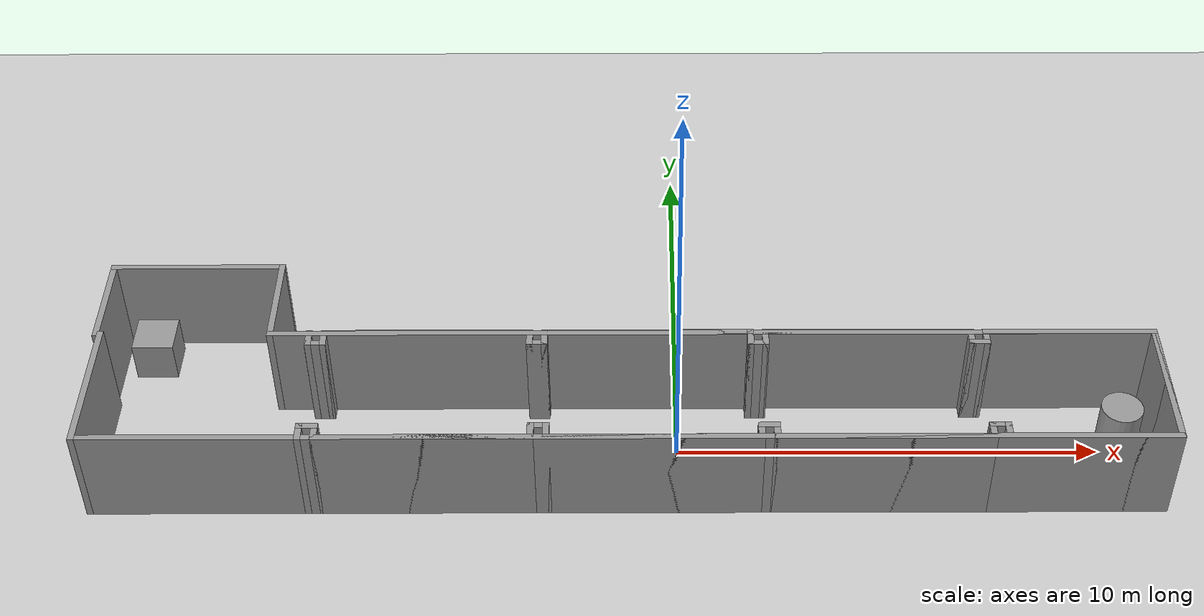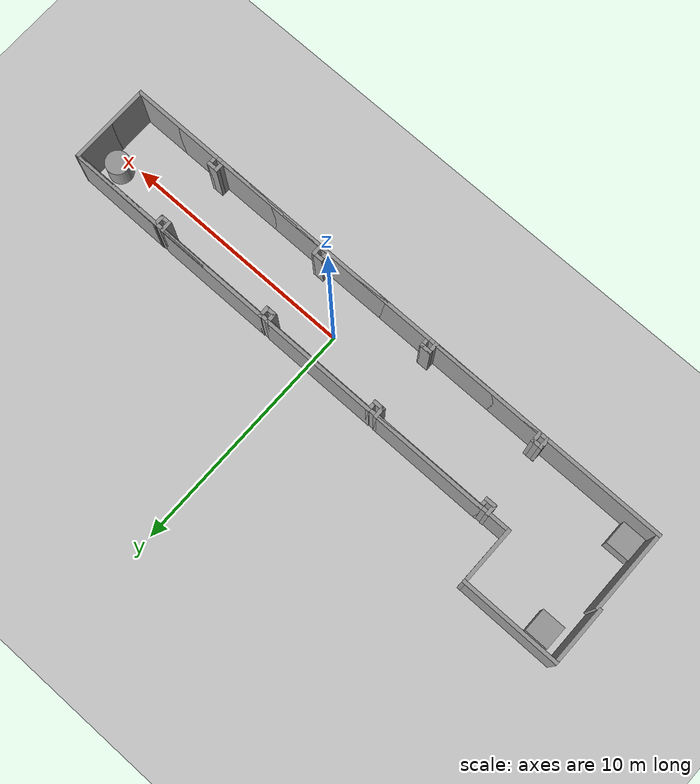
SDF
<sdf version="1.7">
 <world name="default">
  <light name="sun" type="directional">
   <pose>0 0 10 0 -0 0</pose>
   <diffuse>0.8 0.8 0.8 1</diffuse>
   <specular>0.2 0.2 0.2 1</specular>
   <attenuation>
    <range>1000</range>
    <constant>0.9</constant>
    <linear>0.01</linear>
    <quadratic>0.001</quadratic>
   </attenuation>
   <direction>-0.5 0.1 -0.9</direction>
   <spot><inner_angle>0</inner_angle><outer_angle>0</outer_angle><falloff>0</falloff></spot>
  </light>
  <model name="ground_plane">
   <static>1</static>
   <link name="link">
    <collision name="collision">
     <geometry><plane><normal>0 0 1</normal><size>100 100</size></plane></geometry>
     <surface>
      <contact><collide_bitmask>65535</collide_bitmask></contact>
      <friction><ode><mu>100</mu><mu2>50</mu2></ode></friction>
     </surface>
    </collision>
    <visual name="visual">
     <cast_shadows>0</cast_shadows>
     <geometry><plane><normal>0 0 1</normal><size>100 100</size></plane></geometry>
     <material>
      <script><uri>file://media/materials/scripts/gazebo.material</uri><name>Gazebo/Grey</name></script>
     </material>
    </visual>
   </link>
  </model>
  <gravity>0 0 -9.8</gravity>
  <magnetic_field>6e-06 2.3e-05 -4.2e-05</magnetic_field>
  <atmosphere type="adiabatic"/>
  <physics type="ode">
   <max_step_size>0.001</max_step_size>
   <real_time_factor>1</real_time_factor>
   <real_time_update_rate>1000</real_time_update_rate>
  </physics>
  <scene><ambient>0.4 0.4 0.4 1</ambient><background>0.7 0.7 0.7 1</background><shadows>1</shadows></scene>
  <spherical_coordinates>
   <surface_model>EARTH_WGS84</surface_model>
   <latitude_deg>0</latitude_deg>
   <longitude_deg>0</longitude_deg>
   <elevation>0</elevation>
   <heading_deg>0</heading_deg>
  </spherical_coordinates>
  <model name="hanhlang12">
   <pose>-1.22444 1.04892 0 0 -0 0</pose>
   <link name="Wall_1">
    <collision name="Wall_1_Collision">
     <geometry><box><size>3.5 0.15 2.5</size></box></geometry>
     <pose>0 0 1.25 0 -0 0</pose>
    </collision>
    <visual name="Wall_1_Visual">
     <pose>0 0 1.25 0 -0 0</pose>
     <geometry><box><size>3.5 0.15 2.5</size></box></geometry>
     <material>
      <script><uri>file://media/materials/scripts/gazebo.material</uri><name>Gazebo/Grey</name></script>
      <ambient>1 1 1 1</ambient>
     </material>
     <meta><layer>0</layer></meta>
    </visual>
    <pose>-12.3752 -1.175 0 0 -0 -1.5708</pose>
   </link>
   <link name="Wall_11">
    <collision name="Wall_11_Collision">
     <geometry><box><size>0.5 0.15 2.5</size></box></geometry>
     <pose>0 0 1.25 0 -0 0</pose>
    </collision>
    <visual name="Wall_11_Visual">
     <pose>0 0 1.25 0 -0 0</pose>
     <geometry><box><size>0.5 0.15 2.5</size></box></geometry>
     <material>
      <script><uri>file://media/materials/scripts/gazebo.material</uri><name>Gazebo/Grey</name></script>
      <ambient>1 1 1 1</ambient>
     </material>
     <meta><layer>0</layer></meta>
    </visual>
    <pose>-7.44813 0.349555 0 0 -0 -1.5708</pose>
   </link>
   <link name="Wall_12">
    <collision name="Wall_12_Collision">
     <geometry><box><size>0.5 0.15 2.5</size></box></geometry>
     <pose>0 0 1.25 0 -0 0</pose>
    </collision>
    <visual name="Wall_12_Visual">
     <pose>0 0 1.25 0 -0 0</pose>
     <geometry><box><size>0.5 0.15 2.5</size></box></geometry>
     <material>
      <script><uri>file://media/materials/scripts/gazebo.material</uri><name>Gazebo/Grey</name></script>
      <ambient>1 1 1 1</ambient>
     </material>
     <meta><layer>0</layer></meta>
    </visual>
    <pose>-7.27313 0.174555 0 0 -0 0</pose>
   </link>
   <link name="Wall_13">
    <collision name="Wall_13_Collision">
     <geometry><box><size>0.5 0.15 2.5</size></box></geometry>
     <pose>0 0 1.25 0 -0 0</pose>
    </collision>
    <visual name="Wall_13_Visual">
     <pose>0 0 1.25 0 -0 0</pose>
     <geometry><box><size>0.5 0.15 2.5</size></box></geometry>
     <material>
      <script><uri>file://media/materials/scripts/gazebo.material</uri><name>Gazebo/Grey</name></script>
      <ambient>1 1 1 1</ambient>
     </material>
     <meta><layer>0</layer></meta>
    </visual>
    <pose>-7.09812 0.349555 0 0 -0 1.5708</pose>
   </link>
   <link name="Wall_14">
    <collision name="Wall_14_Collision">
     <geometry><box><size>5 0.15 2.5</size></box></geometry>
     <pose>0 0 1.25 0 -0 0</pose>
    </collision>
    <visual name="Wall_14_Visual">
     <pose>0 0 1.25 0 -0 0</pose>
     <geometry><box><size>5 0.15 2.5</size></box></geometry>
     <material>
      <script><uri>file://media/materials/scripts/gazebo.material</uri><name>Gazebo/Grey</name></script>
      <ambient>1 1 1 1</ambient>
     </material>
     <meta><layer>0</layer></meta>
    </visual>
    <pose>-4.67312 0.524555 0 0 -0 0</pose>
   </link>
   <link name="Wall_15">
    <collision name="Wall_15_Collision">
     <geometry><box><size>0.5 0.15 2.5</size></box></geometry>
     <pose>0 0 1.25 0 -0 0</pose>
    </collision>
    <visual name="Wall_15_Visual">
     <pose>0 0 1.25 0 -0 0</pose>
     <geometry><box><size>0.5 0.15 2.5</size></box></geometry>
     <material>
      <script><uri>file://media/materials/scripts/gazebo.material</uri><name>Gazebo/Grey</name></script>
      <ambient>1 1 1 1</ambient>
     </material>
     <meta><layer>0</layer></meta>
    </visual>
    <pose>-2.24812 0.349555 0 0 -0 -1.5708</pose>
   </link>
   <link name="Wall_16">
    <collision name="Wall_16_Collision">
     <geometry><box><size>0.5 0.15 2.5</size></box></geometry>
     <pose>0 0 1.25 0 -0 0</pose>
    </collision>
    <visual name="Wall_16_Visual">
     <pose>0 0 1.25 0 -0 0</pose>
     <geometry><box><size>0.5 0.15 2.5</size></box></geometry>
     <material>
      <script><uri>file://media/materials/scripts/gazebo.material</uri><name>Gazebo/Grey</name></script>
      <ambient>1 1 1 1</ambient>
     </material>
     <meta><layer>0</layer></meta>
    </visual>
    <pose>-2.07312 0.174555 0 0 -0 0</pose>
   </link>
   <link name="Wall_17">
    <collision name="Wall_17_Collision">
     <geometry><box><size>0.5 0.15 2.5</size></box></geometry>
     <pose>0 0 1.25 0 -0 0</pose>
    </collision>
    <visual name="Wall_17_Visual">
     <pose>0 0 1.25 0 -0 0</pose>
     <geometry><box><size>0.5 0.15 2.5</size></box></geometry>
     <material>
      <script><uri>file://media/materials/scripts/gazebo.material</uri><name>Gazebo/Grey</name></script>
      <ambient>1 1 1 1</ambient>
     </material>
     <meta><layer>0</layer></meta>
    </visual>
    <pose>-1.89812 0.349555 0 0 -0 1.5708</pose>
   </link>
   <link name="Wall_18">
    <collision name="Wall_18_Collision">
     <geometry><box><size>5 0.15 2.5</size></box></geometry>
     <pose>0 0 1.25 0 -0 0</pose>
    </collision>
    <visual name="Wall_18_Visual">
     <pose>0 0 1.25 0 -0 0</pose>
     <geometry><box><size>5 0.15 2.5</size></box></geometry>
     <material>
      <script><uri>file://media/materials/scripts/gazebo.material</uri><name>Gazebo/Grey</name></script>
      <ambient>1 1 1 1</ambient>
     </material>
     <meta><layer>0</layer></meta>
    </visual>
    <pose>0.526876 0.524555 0 0 -0 0</pose>
   </link>
   <link name="Wall_19">
    <collision name="Wall_19_Collision">
     <geometry><box><size>0.5 0.15 2.5</size></box></geometry>
     <pose>0 0 1.25 0 -0 0</pose>
    </collision>
    <visual name="Wall_19_Visual">
     <pose>0 0 1.25 0 -0 0</pose>
     <geometry><box><size>0.5 0.15 2.5</size></box></geometry>
     <material>
      <script><uri>file://media/materials/scripts/gazebo.material</uri><name>Gazebo/Grey</name></script>
      <ambient>1 1 1 1</ambient>
     </material>
     <meta><layer>0</layer></meta>
    </visual>
    <pose>2.95188 0.349555 0 0 -0 -1.5708</pose>
   </link>
   <link name="Wall_2">
    <collision name="Wall_2_Collision">
     <geometry><box><size>25 0.15 2.5</size></box></geometry>
     <pose>0 0 1.25 0 -0 0</pose>
    </collision>
    <visual name="Wall_2_Visual">
     <pose>0 0 1.25 0 -0 0</pose>
     <geometry><box><size>25 0.15 2.5</size></box></geometry>
     <material>
      <script><uri>file://media/materials/scripts/gazebo.material</uri><name>Gazebo/Grey</name></script>
      <ambient>1 1 1 1</ambient>
     </material>
     <meta><layer>0</layer></meta>
    </visual>
    <pose>0.049769 -2.85 0 0 -0 0</pose>
   </link>
   <link name="Wall_20">
    <collision name="Wall_20_Collision">
     <geometry><box><size>0.5 0.15 2.5</size></box></geometry>
     <pose>0 0 1.25 0 -0 0</pose>
    </collision>
    <visual name="Wall_20_Visual">
     <pose>0 0 1.25 0 -0 0</pose>
     <geometry><box><size>0.5 0.15 2.5</size></box></geometry>
     <material>
      <script><uri>file://media/materials/scripts/gazebo.material</uri><name>Gazebo/Grey</name></script>
      <ambient>1 1 1 1</ambient>
     </material>
     <meta><layer>0</layer></meta>
    </visual>
    <pose>3.12688 0.174555 0 0 -0 0</pose>
   </link>
   <link name="Wall_21">
    <collision name="Wall_21_Collision">
     <geometry><box><size>0.5 0.15 2.5</size></box></geometry>
     <pose>0 0 1.25 0 -0 0</pose>
    </collision>
    <visual name="Wall_21_Visual">
     <pose>0 0 1.25 0 -0 0</pose>
     <geometry><box><size>0.5 0.15 2.5</size></box></geometry>
     <material>
      <script><uri>file://media/materials/scripts/gazebo.material</uri><name>Gazebo/Grey</name></script>
      <ambient>1 1 1 1</ambient>
     </material>
     <meta><layer>0</layer></meta>
    </visual>
    <pose>3.30188 0.349555 0 0 -0 1.5708</pose>
   </link>
   <link name="Wall_22">
    <collision name="Wall_22_Collision">
     <geometry><box><size>5 0.15 2.5</size></box></geometry>
     <pose>0 0 1.25 0 -0 0</pose>
    </collision>
    <visual name="Wall_22_Visual">
     <pose>0 0 1.25 0 -0 0</pose>
     <geometry><box><size>5 0.15 2.5</size></box></geometry>
     <material>
      <script><uri>file://media/materials/scripts/gazebo.material</uri><name>Gazebo/Grey</name></script>
      <ambient>1 1 1 1</ambient>
     </material>
     <meta><layer>0</layer></meta>
    </visual>
    <pose>5.72687 0.524555 0 0 -0 0</pose>
   </link>
   <link name="Wall_23">
    <collision name="Wall_23_Collision">
     <geometry><box><size>0.5 0.15 2.5</size></box></geometry>
     <pose>0 0 1.25 0 -0 0</pose>
    </collision>
    <visual name="Wall_23_Visual">
     <pose>0 0 1.25 0 -0 0</pose>
     <geometry><box><size>0.5 0.15 2.5</size></box></geometry>
     <material>
      <script><uri>file://media/materials/scripts/gazebo.material</uri><name>Gazebo/Grey</name></script>
      <ambient>1 1 1 1</ambient>
     </material>
     <meta><layer>0</layer></meta>
    </visual>
    <pose>8.15188 0.349555 0 0 -0 -1.5708</pose>
   </link>
   <link name="Wall_24">
    <collision name="Wall_24_Collision">
     <geometry><box><size>0.5 0.15 2.5</size></box></geometry>
     <pose>0 0 1.25 0 -0 0</pose>
    </collision>
    <visual name="Wall_24_Visual">
     <pose>0 0 1.25 0 -0 0</pose>
     <geometry><box><size>0.5 0.15 2.5</size></box></geometry>
     <material>
      <script><uri>file://media/materials/scripts/gazebo.material</uri><name>Gazebo/Grey</name></script>
      <ambient>1 1 1 1</ambient>
     </material>
     <meta><layer>0</layer></meta>
    </visual>
    <pose>8.32688 0.174555 0 0 -0 0</pose>
   </link>
   <link name="Wall_25">
    <collision name="Wall_25_Collision">
     <geometry><box><size>0.5 0.15 2.5</size></box></geometry>
     <pose>0 0 1.25 0 -0 0</pose>
    </collision>
    <visual name="Wall_25_Visual">
     <pose>0 0 1.25 0 -0 0</pose>
     <geometry><box><size>0.5 0.15 2.5</size></box></geometry>
     <material>
      <script><uri>file://media/materials/scripts/gazebo.material</uri><name>Gazebo/Grey</name></script>
      <ambient>1 1 1 1</ambient>
     </material>
     <meta><layer>0</layer></meta>
    </visual>
    <pose>8.50188 0.349555 0 0 -0 1.5708</pose>
   </link>
   <link name="Wall_26">
    <collision name="Wall_26_Collision">
     <geometry><box><size>4.12297 0.15 2.5</size></box></geometry>
     <pose>0 0 1.25 0 -0 0</pose>
    </collision>
    <visual name="Wall_26_Visual">
     <pose>0 0 1.25 0 -0 0</pose>
     <geometry><box><size>4.12297 0.15 2.5</size></box></geometry>
     <material>
      <script><uri>file://media/materials/scripts/gazebo.material</uri><name>Gazebo/Grey</name></script>
      <ambient>1 1 1 1</ambient>
     </material>
     <meta><layer>0</layer></meta>
    </visual>
    <pose>10.4883 0.512277 0 0 -0 -0.006181</pose>
   </link>
   <link name="Wall_27">
    <collision name="Wall_27_Collision">
     <geometry><box><size>3.5 0.15 2.5</size></box></geometry>
     <pose>0 0 1.25 0 -0 0</pose>
    </collision>
    <visual name="Wall_27_Visual">
     <pose>0 0 1.25 0 -0 0</pose>
     <geometry><box><size>3.5 0.15 2.5</size></box></geometry>
     <material>
      <script><uri>file://media/materials/scripts/gazebo.material</uri><name>Gazebo/Grey</name></script>
      <ambient>1 1 1 1</ambient>
     </material>
     <meta><layer>0</layer></meta>
    </visual>
    <pose>12.4748 -1.175 0 0 -0 -1.5708</pose>
   </link>
   <link name="Wall_28">
    <collision name="Wall_28_Collision">
     <geometry><box><size>4 0.15 2.5</size></box></geometry>
     <pose>0 0 1.25 0 -0 0</pose>
    </collision>
    <visual name="Wall_28_Visual">
     <pose>0 0 1.25 0 -0 0</pose>
     <geometry><box><size>4 0.15 2.5</size></box></geometry>
     <material>
      <script><uri>file://media/materials/scripts/gazebo.material</uri><name>Gazebo/Grey</name></script>
      <ambient>1 1 1 1</ambient>
     </material>
     <meta><layer>0</layer></meta>
    </visual>
    <pose>10.5498 -2.85 0 0 -0 3.14159</pose>
   </link>
   <link name="Wall_3">
    <collision name="Wall_3_Collision">
     <geometry><box><size>3.5 0.15 2.5</size></box></geometry>
     <pose>0 0 1.25 0 -0 0</pose>
    </collision>
    <visual name="Wall_3_Visual">
     <pose>0 0 1.25 0 -0 0</pose>
     <geometry><box><size>3.5 0.15 2.5</size></box></geometry>
     <material>
      <script><uri>file://media/materials/scripts/gazebo.material</uri><name>Gazebo/Grey</name></script>
      <ambient>1 1 1 1</ambient>
     </material>
     <meta><layer>0</layer></meta>
    </visual>
    <pose>12.4748 -1.175 0 0 -0 1.5708</pose>
   </link>
   <link name="Wall_31">
    <collision name="Wall_31_Collision">
     <geometry><box><size>4 0.15 2.5</size></box></geometry>
     <pose>0 0 1.25 0 -0 0</pose>
    </collision>
    <visual name="Wall_31_Visual">
     <pose>0 0 1.25 0 -0 0</pose>
     <geometry><box><size>4 0.15 2.5</size></box></geometry>
     <material>
      <script><uri>file://media/materials/scripts/gazebo.material</uri><name>Gazebo/Grey</name></script>
      <ambient>1 1 1 1</ambient>
     </material>
     <meta><layer>0</layer></meta>
    </visual>
    <pose>10.5498 -2.85 0 0 -0 3.14159</pose>
   </link>
   <link name="Wall_32">
    <collision name="Wall_32_Collision">
     <geometry><box><size>0.5 0.15 2.5</size></box></geometry>
     <pose>0 0 1.25 0 -0 0</pose>
    </collision>
    <visual name="Wall_32_Visual">
     <pose>0 0 1.25 0 -0 0</pose>
     <geometry><box><size>0.5 0.15 2.5</size></box></geometry>
     <material>
      <script><uri>file://media/materials/scripts/gazebo.material</uri><name>Gazebo/Grey</name></script>
      <ambient>1 1 1 1</ambient>
     </material>
     <meta><layer>0</layer></meta>
    </visual>
    <pose>8.62477 -2.675 0 0 -0 1.5708</pose>
   </link>
   <link name="Wall_33">
    <collision name="Wall_33_Collision">
     <geometry><box><size>0.5 0.15 2.5</size></box></geometry>
     <pose>0 0 1.25 0 -0 0</pose>
    </collision>
    <visual name="Wall_33_Visual">
     <pose>0 0 1.25 0 -0 0</pose>
     <geometry><box><size>0.5 0.15 2.5</size></box></geometry>
     <material>
      <script><uri>file://media/materials/scripts/gazebo.material</uri><name>Gazebo/Grey</name></script>
      <ambient>1 1 1 1</ambient>
     </material>
     <meta><layer>0</layer></meta>
    </visual>
    <pose>8.44977 -2.5 0 0 -0 3.14159</pose>
   </link>
   <link name="Wall_34">
    <collision name="Wall_34_Collision">
     <geometry><box><size>0.5 0.15 2.5</size></box></geometry>
     <pose>0 0 1.25 0 -0 0</pose>
    </collision>
    <visual name="Wall_34_Visual">
     <pose>0 0 1.25 0 -0 0</pose>
     <geometry><box><size>0.5 0.15 2.5</size></box></geometry>
     <material>
      <script><uri>file://media/materials/scripts/gazebo.material</uri><name>Gazebo/Grey</name></script>
      <ambient>1 1 1 1</ambient>
     </material>
     <meta><layer>0</layer></meta>
    </visual>
    <pose>8.27477 -2.675 0 0 -0 -1.5708</pose>
   </link>
   <link name="Wall_35">
    <collision name="Wall_35_Collision">
     <geometry><box><size>5 0.15 2.5</size></box></geometry>
     <pose>0 0 1.25 0 -0 0</pose>
    </collision>
    <visual name="Wall_35_Visual">
     <pose>0 0 1.25 0 -0 0</pose>
     <geometry><box><size>5 0.15 2.5</size></box></geometry>
     <material>
      <script><uri>file://media/materials/scripts/gazebo.material</uri><name>Gazebo/Grey</name></script>
      <ambient>1 1 1 1</ambient>
     </material>
     <meta><layer>0</layer></meta>
    </visual>
    <pose>5.84977 -2.85 0 0 -0 3.14159</pose>
   </link>
   <link name="Wall_36">
    <collision name="Wall_36_Collision">
     <geometry><box><size>0.5 0.15 2.5</size></box></geometry>
     <pose>0 0 1.25 0 -0 0</pose>
    </collision>
    <visual name="Wall_36_Visual">
     <pose>0 0 1.25 0 -0 0</pose>
     <geometry><box><size>0.5 0.15 2.5</size></box></geometry>
     <material>
      <script><uri>file://media/materials/scripts/gazebo.material</uri><name>Gazebo/Grey</name></script>
      <ambient>1 1 1 1</ambient>
     </material>
     <meta><layer>0</layer></meta>
    </visual>
    <pose>3.42477 -2.675 0 0 -0 1.5708</pose>
   </link>
   <link name="Wall_37">
    <collision name="Wall_37_Collision">
     <geometry><box><size>0.5 0.15 2.5</size></box></geometry>
     <pose>0 0 1.25 0 -0 0</pose>
    </collision>
    <visual name="Wall_37_Visual">
     <pose>0 0 1.25 0 -0 0</pose>
     <geometry><box><size>0.5 0.15 2.5</size></box></geometry>
     <material>
      <script><uri>file://media/materials/scripts/gazebo.material</uri><name>Gazebo/Grey</name></script>
      <ambient>1 1 1 1</ambient>
     </material>
     <meta><layer>0</layer></meta>
    </visual>
    <pose>3.24977 -2.5 0 0 -0 3.14159</pose>
   </link>
   <link name="Wall_38">
    <collision name="Wall_38_Collision">
     <geometry><box><size>0.5 0.15 2.5</size></box></geometry>
     <pose>0 0 1.25 0 -0 0</pose>
    </collision>
    <visual name="Wall_38_Visual">
     <pose>0 0 1.25 0 -0 0</pose>
     <geometry><box><size>0.5 0.15 2.5</size></box></geometry>
     <material>
      <script><uri>file://media/materials/scripts/gazebo.material</uri><name>Gazebo/Grey</name></script>
      <ambient>1 1 1 1</ambient>
     </material>
     <meta><layer>0</layer></meta>
    </visual>
    <pose>3.07477 -2.675 0 0 -0 -1.5708</pose>
   </link>
   <link name="Wall_39">
    <collision name="Wall_39_Collision">
     <geometry><box><size>5 0.15 2.5</size></box></geometry>
     <pose>0 0 1.25 0 -0 0</pose>
    </collision>
    <visual name="Wall_39_Visual">
     <pose>0 0 1.25 0 -0 0</pose>
     <geometry><box><size>5 0.15 2.5</size></box></geometry>
     <material>
      <script><uri>file://media/materials/scripts/gazebo.material</uri><name>Gazebo/Grey</name></script>
      <ambient>1 1 1 1</ambient>
     </material>
     <meta><layer>0</layer></meta>
    </visual>
    <pose>0.649769 -2.85 0 0 -0 3.14159</pose>
   </link>
   <link name="Wall_4">
    <collision name="Wall_4_Collision">
     <geometry><box><size>21 0.15 2.5</size></box></geometry>
     <pose>0 0 1.25 0 -0 0</pose>
    </collision>
    <visual name="Wall_4_Visual">
     <pose>0 0 1.25 0 -0 0</pose>
     <geometry><box><size>21 0.15 2.5</size></box></geometry>
     <material>
      <script><uri>file://media/materials/scripts/gazebo.material</uri><name>Gazebo/Grey</name></script>
      <ambient>1 1 1 1</ambient>
     </material>
     <meta><layer>0</layer></meta>
    </visual>
    <pose>2.04977 0.5 0 0 -0 3.14159</pose>
   </link>
   <link name="Wall_40">
    <collision name="Wall_40_Collision">
     <geometry><box><size>0.5 0.15 2.5</size></box></geometry>
     <pose>0 0 1.25 0 -0 0</pose>
    </collision>
    <visual name="Wall_40_Visual">
     <pose>0 0 1.25 0 -0 0</pose>
     <geometry><box><size>0.5 0.15 2.5</size></box></geometry>
     <material>
      <script><uri>file://media/materials/scripts/gazebo.material</uri><name>Gazebo/Grey</name></script>
      <ambient>1 1 1 1</ambient>
     </material>
     <meta><layer>0</layer></meta>
    </visual>
    <pose>-1.77523 -2.675 0 0 -0 1.5708</pose>
   </link>
   <link name="Wall_41">
    <collision name="Wall_41_Collision">
     <geometry><box><size>0.5 0.15 2.5</size></box></geometry>
     <pose>0 0 1.25 0 -0 0</pose>
    </collision>
    <visual name="Wall_41_Visual">
     <pose>0 0 1.25 0 -0 0</pose>
     <geometry><box><size>0.5 0.15 2.5</size></box></geometry>
     <material>
      <script><uri>file://media/materials/scripts/gazebo.material</uri><name>Gazebo/Grey</name></script>
      <ambient>1 1 1 1</ambient>
     </material>
     <meta><layer>0</layer></meta>
    </visual>
    <pose>-1.95023 -2.5 0 0 -0 3.14159</pose>
   </link>
   <link name="Wall_42">
    <collision name="Wall_42_Collision">
     <geometry><box><size>0.5 0.15 2.5</size></box></geometry>
     <pose>0 0 1.25 0 -0 0</pose>
    </collision>
    <visual name="Wall_42_Visual">
     <pose>0 0 1.25 0 -0 0</pose>
     <geometry><box><size>0.5 0.15 2.5</size></box></geometry>
     <material>
      <script><uri>file://media/materials/scripts/gazebo.material</uri><name>Gazebo/Grey</name></script>
      <ambient>1 1 1 1</ambient>
     </material>
     <meta><layer>0</layer></meta>
    </visual>
    <pose>-2.12523 -2.675 0 0 -0 -1.5708</pose>
   </link>
   <link name="Wall_43">
    <collision name="Wall_43_Collision">
     <geometry><box><size>5 0.15 2.5</size></box></geometry>
     <pose>0 0 1.25 0 -0 0</pose>
    </collision>
    <visual name="Wall_43_Visual">
     <pose>0 0 1.25 0 -0 0</pose>
     <geometry><box><size>5 0.15 2.5</size></box></geometry>
     <material>
      <script><uri>file://media/materials/scripts/gazebo.material</uri><name>Gazebo/Grey</name></script>
      <ambient>1 1 1 1</ambient>
     </material>
     <meta><layer>0</layer></meta>
    </visual>
    <pose>-4.55023 -2.85 0 0 -0 3.14159</pose>
   </link>
   <link name="Wall_44">
    <collision name="Wall_44_Collision">
     <geometry><box><size>0.5 0.15 2.5</size></box></geometry>
     <pose>0 0 1.25 0 -0 0</pose>
    </collision>
    <visual name="Wall_44_Visual">
     <pose>0 0 1.25 0 -0 0</pose>
     <geometry><box><size>0.5 0.15 2.5</size></box></geometry>
     <material>
      <script><uri>file://media/materials/scripts/gazebo.material</uri><name>Gazebo/Grey</name></script>
      <ambient>1 1 1 1</ambient>
     </material>
     <meta><layer>0</layer></meta>
    </visual>
    <pose>-6.97523 -2.675 0 0 -0 1.5708</pose>
   </link>
   <link name="Wall_45">
    <collision name="Wall_45_Collision">
     <geometry><box><size>0.5 0.15 2.5</size></box></geometry>
     <pose>0 0 1.25 0 -0 0</pose>
    </collision>
    <visual name="Wall_45_Visual">
     <pose>0 0 1.25 0 -0 0</pose>
     <geometry><box><size>0.5 0.15 2.5</size></box></geometry>
     <material>
      <script><uri>file://media/materials/scripts/gazebo.material</uri><name>Gazebo/Grey</name></script>
      <ambient>1 1 1 1</ambient>
     </material>
     <meta><layer>0</layer></meta>
    </visual>
    <pose>-7.15023 -2.5 0 0 -0 3.14159</pose>
   </link>
   <link name="Wall_46">
    <collision name="Wall_46_Collision">
     <geometry><box><size>0.5 0.15 2.5</size></box></geometry>
     <pose>0 0 1.25 0 -0 0</pose>
    </collision>
    <visual name="Wall_46_Visual">
     <pose>0 0 1.25 0 -0 0</pose>
     <geometry><box><size>0.5 0.15 2.5</size></box></geometry>
     <material>
      <script><uri>file://media/materials/scripts/gazebo.material</uri><name>Gazebo/Grey</name></script>
      <ambient>1 1 1 1</ambient>
     </material>
     <meta><layer>0</layer></meta>
    </visual>
    <pose>-7.32523 -2.675 0 0 -0 -1.5708</pose>
   </link>
   <link name="Wall_5">
    <collision name="Wall_5_Collision">
     <geometry><box><size>2.5 0.15 2.5</size></box></geometry>
     <pose>0 0 1.25 0 -0 0</pose>
    </collision>
    <visual name="Wall_5_Visual">
     <pose>0 0 1.25 0 -0 0</pose>
     <geometry><box><size>2.5 0.15 2.5</size></box></geometry>
     <material>
      <script><uri>file://media/materials/scripts/gazebo.material</uri><name>Gazebo/Grey</name></script>
      <ambient>1 1 1 1</ambient>
     </material>
     <meta><layer>0</layer></meta>
    </visual>
    <pose>-8.37523 1.675 0 0 -0 1.5708</pose>
   </link>
   <link name="Wall_6">
    <collision name="Wall_6_Collision">
     <geometry><box><size>4.25 0.15 2.5</size></box></geometry>
     <pose>0 0 1.25 0 -0 0</pose>
    </collision>
    <visual name="Wall_6_Visual">
     <pose>0 0 1.25 0 -0 0</pose>
     <geometry><box><size>4.25 0.15 2.5</size></box></geometry>
     <material>
      <script><uri>file://media/materials/scripts/gazebo.material</uri><name>Gazebo/Grey</name></script>
      <ambient>1 1 1 1</ambient>
     </material>
     <meta><layer>0</layer></meta>
    </visual>
    <pose>-10.4252 2.85 0 0 -0 3.14159</pose>
   </link>
   <link name="Wall_7">
    <collision name="Wall_7_Collision">
     <geometry><box><size>2.5 0.15 2.5</size></box></geometry>
     <pose>0 0 1.25 0 -0 0</pose>
    </collision>
    <visual name="Wall_7_Visual">
     <pose>0 0 1.25 0 -0 0</pose>
     <geometry><box><size>2.5 0.15 2.5</size></box></geometry>
     <material>
      <script><uri>file://media/materials/scripts/gazebo.material</uri><name>Gazebo/Grey</name></script>
      <ambient>1 1 1 1</ambient>
     </material>
     <meta><layer>0</layer></meta>
    </visual>
    <pose>-12.4752 1.675 0 0 -0 -1.5708</pose>
   </link>
   <static>1</static>
  </model>
  <model name="unit_box">
   <pose>-12.8042 3.10573 0.499995 0 1e-05 0</pose>
   <link name="link">
    <inertial>
     <mass>1</mass>
     <inertia>
      <ixx>0.166667</ixx>
      <ixy>0</ixy>
      <ixz>0</ixz>
      <iyy>0.166667</iyy>
      <iyz>0</iyz>
      <izz>0.166667</izz>
     </inertia>
    </inertial>
    <collision name="collision"><geometry><box><size>1 1 1</size></box></geometry></collision>
    <visual name="visual">
     <geometry><box><size>1 1 1</size></box></geometry>
     <material>
      <script><name>Gazebo/Grey</name><uri>file://media/materials/scripts/gazebo.material</uri></script>
     </material>
    </visual>
   </link>
  </model>
  <model name="unit_box_0">
   <pose>-12.9744 -1.17809 0.499995 -1e-05 -0 0</pose>
   <link name="link">
    <inertial>
     <mass>1</mass>
     <inertia>
      <ixx>0.166667</ixx>
      <ixy>0</ixy>
      <ixz>0</ixz>
      <iyy>0.166667</iyy>
      <iyz>0</iyz>
      <izz>0.166667</izz>
     </inertia>
    </inertial>
    <collision name="collision"><geometry><box><size>1 1 1</size></box></geometry></collision>
    <visual name="visual">
     <geometry><box><size>1 1 1</size></box></geometry>
     <material>
      <script><name>Gazebo/Grey</name><uri>file://media/materials/scripts/gazebo.material</uri></script>
     </material>
    </visual>
   </link>
  </model>
  <model name="unit_cylinder">
   <pose>10.5686 0.512396 0.499997 3e-06 4e-06 -0</pose>
   <link name="link">
    <inertial>
     <mass>1</mass>
     <inertia><ixx>0.145833</ixx><ixy>0</ixy><ixz>0</ixz><iyy>0.145833</iyy><iyz>0</iyz><izz>0.125</izz></inertia>
    </inertial>
    <collision name="collision">
     <geometry><cylinder><radius>0.5</radius><length>1</length></cylinder></geometry>
    </collision>
    <visual name="visual">
     <geometry><cylinder><radius>0.5</radius><length>1</length></cylinder></geometry>
     <material>
      <script><name>Gazebo/Grey</name><uri>file://media/materials/scripts/gazebo.material</uri></script>
     </material>
    </visual>
   </link>
  </model>
 </world>
</sdf>
